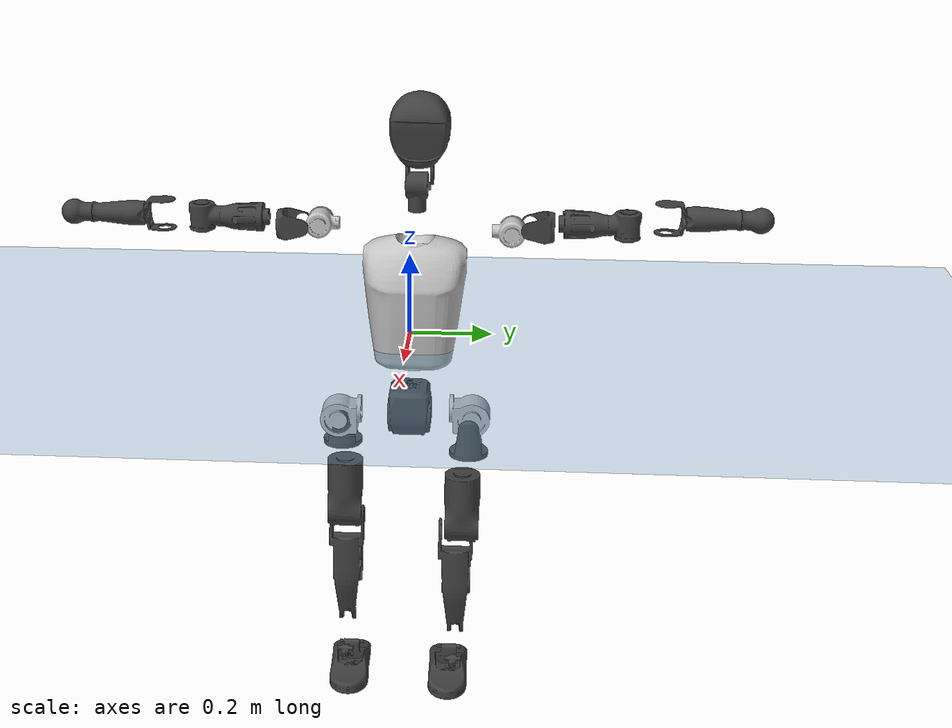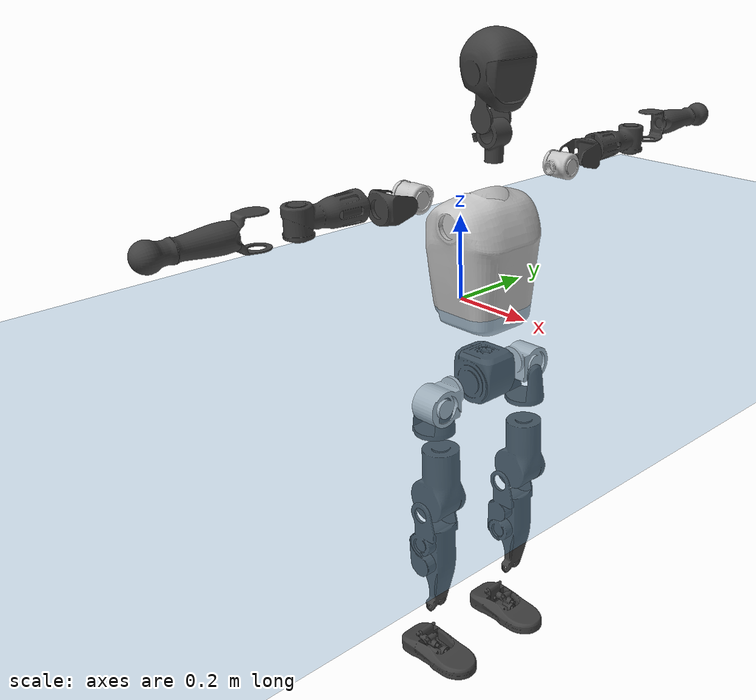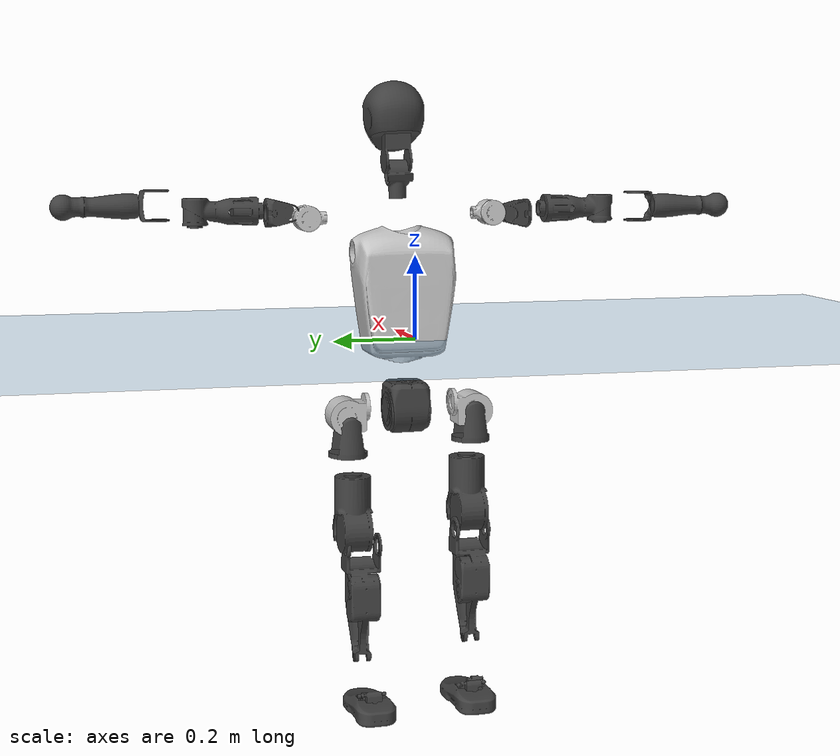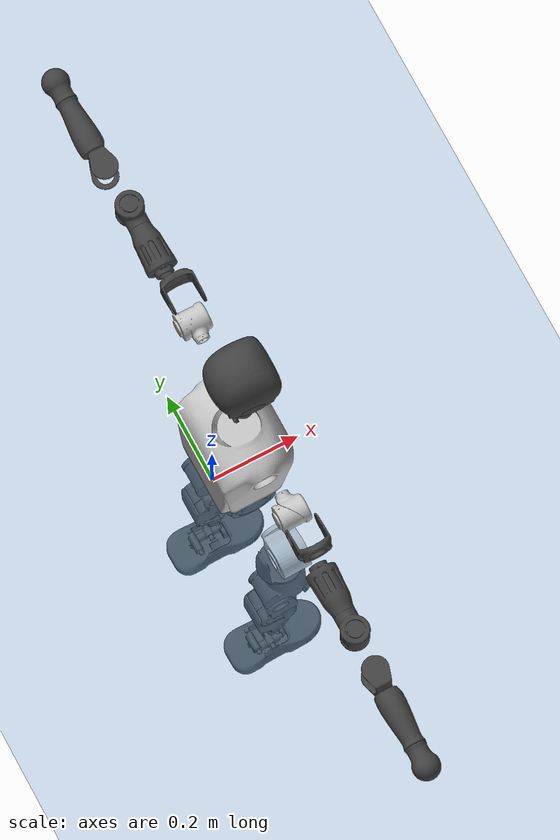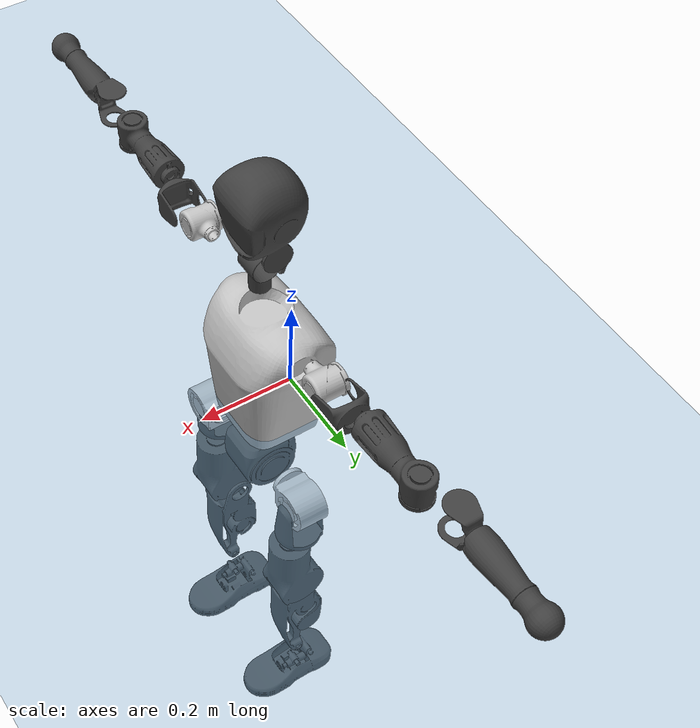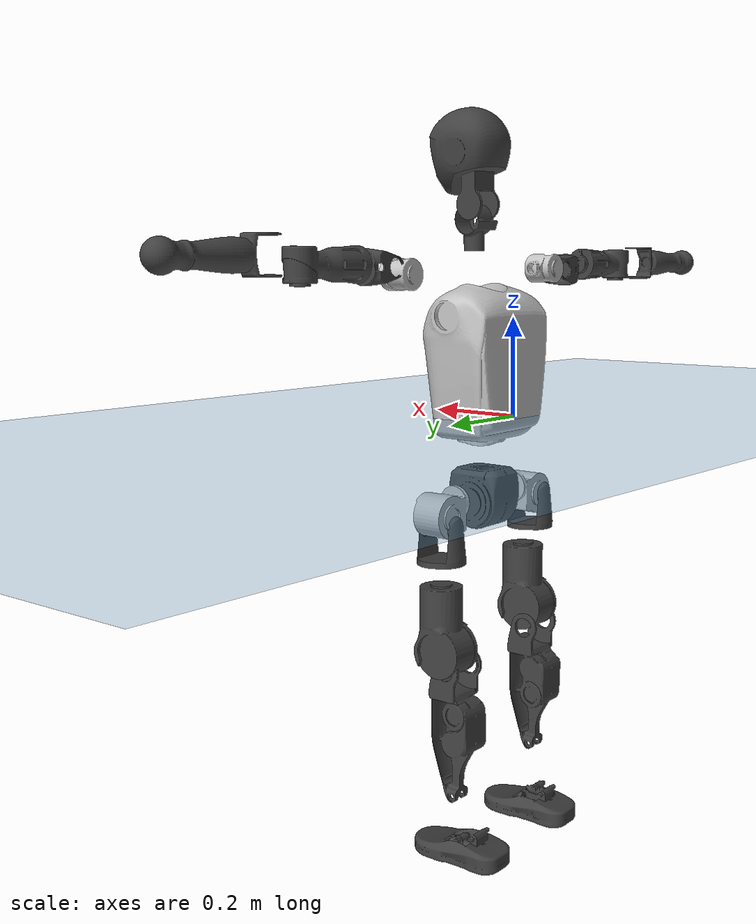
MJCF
<mujoco model="T1">
  <compiler angle="radian" assetdir="assets" balanceinertia="true" inertiafromgeom="false"/>

  <option timestep="0.005" density="1.2" viscosity="2e-05"/>

  <size nkey="1"/>

  <visual>
    <quality shadowsize="8192"/>
    <map shadowclip="0.5"/>
  </visual>

  <default>
    <default class="/">
      <joint armature="0.01" damping="0.01" frictionloss="0.1"/>
      <geom contype="0" conaffinity="0" group="1" solref="-1000 -80"/>
      <site size="0.01 0.005 0.005" group="5"/>
      <general forcelimited="true" biastype="affine" gainprm="25" biasprm="0 -25 -0.6"/>
      <default class="t1">
        <geom rgba="0.25 0.25 0.25 1"/>
        <default class="visual">
          <geom type="mesh" group="2"/>
        </default>
        <default class="collision">
          <geom group="3"/>
        </default>
        <default class="foot">
          <geom size="0.1115 0.05 0.015" type="box" condim="6" group="4" priority="1" solimp="0.015 1 0.015"/>
        </default>
        <default class="reward_collision_sphere">
          <geom group="5" rgba="1 0 0 1"/>
        </default>
      </default>
    </default>
  </default>

  <asset>
    <texture type="skybox" colorspace="auto" name="//unnamed_texture_0" builtin="gradient" rgb1="0.95 0.95 0.95" rgb2="0.95 0.95 0.95" width="100" height="600"/>
    <texture type="2d" colorspace="auto" name="texplane" builtin="checker" rgb1="0.345 0.575 0.748" rgb2="0.345 0.575 0.748" markrgb="1 1 1" width="512" height="512"/>
    <material name="MatPlane" class="/" texture="texplane" texuniform="true" texrepeat="2 2" specular="0.9"/>
    <mesh name="Trunk" class="/" file="Trunk.stl"/>
    <mesh name="H1" class="/" file="H1.stl"/>
    <mesh name="H2" class="/" file="H2.stl"/>
    <mesh name="AL1" class="/" file="AL1.stl"/>
    <mesh name="AL2" class="/" file="AL2.stl"/>
    <mesh name="AL3" class="/" file="AL3.stl"/>
    <mesh name="left_hand_link" class="/" file="left_hand_link.stl"/>
    <mesh name="AR1" class="/" file="AR1.stl"/>
    <mesh name="AR2" class="/" file="AR2.stl"/>
    <mesh name="AR3" class="/" file="AR3.stl"/>
    <mesh name="right_hand_link" class="/" file="right_hand_link.stl"/>
    <mesh name="Waist" class="/" file="Waist.stl"/>
    <mesh name="Hip_Pitch_Left" class="/" file="Hip_Pitch_Left.stl"/>
    <mesh name="Hip_Roll_Left" class="/" file="Hip_Roll_Left.stl"/>
    <mesh name="Hip_Yaw_Left" class="/" file="Hip_Yaw_Left.stl"/>
    <mesh name="Shank_Left" class="/" file="Shank_Left.stl"/>
    <mesh name="Ankle_Cross_Left" class="/" file="Ankle_Cross_Left.stl"/>
    <mesh name="left_foot_link" class="/" file="left_foot_link.stl"/>
    <mesh name="Hip_Pitch_Right" class="/" file="Hip_Pitch_Right.stl"/>
    <mesh name="Hip_Roll_Right" class="/" file="Hip_Roll_Right.stl"/>
    <mesh name="Hip_Yaw_Right" class="/" file="Hip_Yaw_Right.stl"/>
    <mesh name="Shank_Right" class="/" file="Shank_Right.stl"/>
    <mesh name="Ankle_Cross_Right" class="/" file="Ankle_Cross_Right.stl"/>
    <mesh name="right_foot_link" class="/" file="right_foot_link.stl"/>
  </asset>

  <worldbody>
    <geom name="floor" class="/" size="100 100 0.125" type="plane" group="0" material="MatPlane"/>
    <light name="toplight_shadow" class="/" pos="0 0 5" dir="0.0990148 0.0990148 -0.990148" type="directional" ambient="0.04 0.04 0.04" diffuse="0.55 0.55 0.55" specular="0.12 0.12 0.12"/>
    <light name="toplight_fill" class="/" pos="0 0 5" dir="0.0990148 0.0990148 -0.990148" type="directional" castshadow="false" ambient="0.04 0.04 0.04" diffuse="0.3 0.3 0.3" specular="0.08 0.08 0.08"/>
    <body name="trunk" childclass="t1" pos="0.00967437 0.0143048 -0.0111087" quat="0.999983 -0.00462302 -0.0016816 0.00309985">
      <inertial pos="0.0634869 0.00803172 0.137259" quat="0.999571 -0.0237833 -0.000262175 0.0170744" mass="32.5775" diaginertia="0.174525 0.550346 0.251258"/>
      <joint name="//unnamed_joint_0" type="free" armature="0" damping="0" frictionloss="0"/>
      <geom name="//unnamed_geom_1" class="visual" rgba="0.76 0.76 0.76 1" mesh="Trunk"/>
      <geom name="//unnamed_geom_2" class="collision" size="0.10392 0.13856 0.20784" pos="0.0696092 0 0.168132" type="box"/>
      <geom name="//unnamed_geom_3" class="reward_collision_sphere" size="0.159344" pos="0.0696092 0 0.14011"/>
      <geom name="//unnamed_geom_4" class="reward_collision_sphere" size="0.020784" pos="0.0696092 0.135621 0"/>
      <geom name="//unnamed_geom_5" class="reward_collision_sphere" size="0.020784" pos="0.0696092 -0.135621 0"/>
      <geom name="//unnamed_geom_6" class="reward_collision_sphere" size="0.020784" pos="0.0696092 0.170723 0.252198"/>
      <geom name="//unnamed_geom_7" class="reward_collision_sphere" size="0.020784" pos="0.0696092 -0.170723 0.252198"/>
      <site name="imu" pos="0.0611282 0.0788927 -0.0175136" size="0.013856"/>
      <camera name="track" pos="0 -3.19108 0" quat="0.707107 0.707107 0 0" mode="trackcom"/>
      <camera name="ego_camera" pos="0.141539 0 0.588461" quat="-0.5 -0.5 0.5 0.5"/>
      <body name="H1" pos="0.0744552 0.00455001 0.34384" quat="0.999985 -0.0016814 0.0051449 -0.000922434">
        <inertial pos="-0.0116485 -0.00671347 0.0686441" quat="0.807001 0.0161998 0.0493522 0.588262" mass="1.13381" diaginertia="0.000428089 0.00176664 0.000846435"/>
        <joint name="AAHead_yaw" pos="0 0 0" axis="0.000868366 0.0790271 0.996872" stiffness="0.0150696" range="-1.32196 1.45806" armature="0.00545729" damping="0.00774031" frictionloss="0.22903"/>
        <geom name="//unnamed_geom_8" class="visual" mesh="H1"/>
        <body name="H2" pos="-0.0151502 0.00544767 0.0909361" quat="0.999997 -0.00143321 -0.00115264 -0.00152692">
          <inertial pos="0.00389396 0.0189385 0.140125" quat="0.985785 0.134979 -0.0777367 -0.0629681" mass="1.96045" diaginertia="0.00478369 0.0286727 0.0112847"/>
          <joint name="Head_pitch" pos="0 0 0" axis="0.0677931 -0.997528 -0.0184764" stiffness="0.0494412" range="-1.10427 0.13723" armature="0.00936118" damping="0" frictionloss="0.202447"/>
          <geom name="//unnamed_geom_9" class="visual" mesh="H2"/>
          <geom name="//unnamed_geom_10" class="collision" size="0.110848" pos="0.0116015 0 0.154121"/>
          <geom name="//unnamed_geom_11" class="reward_collision_sphere" size="0.124704" pos="0.0232031 0 0.14011"/>
        </body>
      </body>
      <body name="AL1" pos="0.0786642 0.180747 0.300927" quat="0.999991 -0.0031997 0.00254638 -0.000830384">
        <inertial pos="-0.00618271 0.0636189 0.0170816" quat="0.540974 0.459499 -0.545301 0.445932" mass="1.09056" diaginertia="0.00228627 0.0108104 0.00130082"/>
        <joint name="Left_Shoulder_Pitch" pos="0 0 0" axis="0.0753746 0.997065 0.0134378" range="-3.28864 1.41534" armature="0.0193802" damping="0.0335056" frictionloss="0.100223"/>
        <geom name="//unnamed_geom_12" class="visual" rgba="0.76 0.76 0.76 1" mesh="AL1"/>
        <body name="AL2" pos="0.0078819 0.0886814 0.0147179" quat="0.999955 0.0084646 -0.00378097 0.00175484">
          <inertial pos="0.00325963 0.0788081 -0.000379086" quat="0.487196 0.513203 -0.486165 0.512744" mass="0.433088" diaginertia="0.000810765 0.00402926 0.000965993"/>
          <joint name="Left_Shoulder_Roll" pos="0 0 0" axis="-0.995718 0.0379288 0.0843028" stiffness="0.0856712" range="-1.89775 1.90227" armature="0.0210288" damping="0.0958298" frictionloss="0.0284099"/>
          <geom name="//unnamed_geom_13" class="visual" mesh="AL2"/>
          <body name="AL3" pos="-0.0122495 0.0785984 0.0050323" quat="0.999966 -0.00212245 -6.4814e-05 -0.00800672">
            <inertial pos="-0.00015334 0.151046 0.008572" quat="0.736198 0.675753 0.0288268 0.0232147" mass="2.36858" diaginertia="0.0296126 0.121904 0.00465216"/>
            <joint name="Left_Elbow_Pitch" pos="0 0 0" axis="0.0318889 -0.997434 0.0640926" stiffness="0.0722395" range="-2.63765 2.61668" armature="0.00170543" damping="0.0955309" frictionloss="0.0435624"/>
            <geom name="//unnamed_geom_14" class="visual" mesh="AL3"/>
            <geom name="//unnamed_geom_15" class="collision" size="0.0415679 0.10392" pos="0 0.0797771 0" quat="0.707105 0.707108 0 0" type="cylinder"/>
            <geom name="//unnamed_geom_16" class="reward_collision_sphere" size="0.0498815"/>
            <body name="left_hand_link" pos="-0.010413 0.236253 0.0167922" quat="0.99998 -0.00201873 0.00176657 0.0057671">
              <inertial pos="0.00210082 0.172894 0.0149556" quat="0.714683 0.699017 -0.0202719 0.0138838" mass="0.744815" diaginertia="0.0148661 0.0899302 0.0010556"/>
              <joint name="Left_Elbow_Yaw" pos="0 0 0" axis="0.0159762 -0.0574221 0.998222" range="-2.44506 -0.0527435" armature="0.0189391" damping="0.00149547" frictionloss="0.0579932"/>
              <geom name="//unnamed_geom_17" class="visual" mesh="left_hand_link"/>
              <geom name="//unnamed_geom_18" class="collision" size="0.0415679 0.12124" pos="0 0.207421 0" quat="0.707105 0.707108 0 0" type="cylinder"/>
              <geom name="//unnamed_geom_19" class="reward_collision_sphere" size="0.0692799"/>
              <geom name="//unnamed_geom_20" class="reward_collision_sphere" size="0.0484959" pos="0 0.17551 0"/>
              <geom name="//unnamed_geom_21" class="reward_collision_sphere" size="0.0484959" pos="0 0.343042 0"/>
            </body>
          </body>
        </body>
      </body>
      <body name="AR1" pos="0.0628816 -0.178495 0.306101" quat="0.999986 0.00393608 0.00317572 0.00156554">
        <inertial pos="-0.00331958 -0.0558475 -0.0162514" quat="0.511145 0.494619 -0.490582 0.503401" mass="1.39629" diaginertia="0.00308437 0.013062 0.00119654"/>
        <joint name="Right_Shoulder_Pitch" pos="0 0 0" axis="-0.00968777 -0.99995 0.00244056" range="-1.06364 3.30864" armature="0.0216526" damping="0" frictionloss="0.0911408"/>
        <geom name="//unnamed_geom_22" class="visual" rgba="0.76 0.76 0.76 1" mesh="AR1"/>
        <body name="AR2" pos="0.00528976 -0.0899465 -0.00377662" quat="0.999999 0.000501862 -0.000956264 -0.00118003">
          <inertial pos="0.00268038 -0.0608117 0.0170375" quat="0.493466 0.482636 -0.486836 0.535298" mass="0.33114" diaginertia="0.000881578 0.00389658 0.00102282"/>
          <joint name="Right_Shoulder_Roll" pos="0 0 0" axis="-0.999983 0.00555706 -0.00145898" range="-1.57532 1.25781" armature="0.0135165" damping="0.0909426" frictionloss="0.130944"/>
          <geom name="//unnamed_geom_23" class="visual" mesh="AR2"/>
          <body name="AR3" pos="-0.0133611 -0.0910325 0.0122221" quat="0.999997 0.00138857 0.000549196 -0.00178156">
            <inertial pos="-0.00896004 -0.124943 0.00592015" quat="0.70645 0.707697 -0.00759671 0.00603291" mass="2.2874" diaginertia="0.0246084 0.0983667 0.00256222"/>
            <joint name="Right_Elbow_Pitch" pos="0 0 0" axis="0.0103118 0.998984 0.0438675" stiffness="0.0611895" range="-2.23977 2.29649" armature="0.00244967" damping="0.00541242" frictionloss="0.250244"/>
            <geom name="//unnamed_geom_24" class="visual" mesh="AR3"/>
            <geom name="//unnamed_geom_25" class="collision" size="0.0415679 0.10392" pos="0 -0.0797771 0" quat="0.707105 0.707108 0 0" type="cylinder"/>
            <geom name="//unnamed_geom_26" class="reward_collision_sphere" size="0.0498815"/>
            <body name="right_hand_link" pos="-0.00392586 -0.238835 0.00258086" quat="0.999983 -0.00206999 -0.00464138 -0.002818">
              <inertial pos="0.00755815 -0.170643 0.0186905" quat="0.674605 0.734209 -0.0733763 0.0214522" mass="0.655388" diaginertia="0.0202943 0.0839527 0.00097497"/>
              <joint name="Right_Elbow_Yaw" pos="0 0 0" axis="0.0524661 -0.0219118 0.998382" stiffness="0.078019" range="0.325691 2.09168" armature="0.0190284" damping="0.0436031" frictionloss="0.0840752"/>
              <geom name="//unnamed_geom_27" class="visual" mesh="right_hand_link"/>
              <geom name="//unnamed_geom_28" class="collision" size="0.0415679 0.12124" pos="0 -0.207421 0" quat="0.707105 0.707108 0 0" type="cylinder"/>
              <geom name="//unnamed_geom_29" class="reward_collision_sphere" size="0.0692799"/>
              <geom name="//unnamed_geom_30" class="reward_collision_sphere" size="0.0484959" pos="0 -0.17551 0"/>
              <geom name="//unnamed_geom_31" class="reward_collision_sphere" size="0.0484959" pos="0 -0.343042 0"/>
            </body>
          </body>
        </body>
      </body>
      <body name="Waist" pos="0.0621119 -0.00910362 -0.167633" quat="0.999989 0.000534027 -0.00253728 0.00390794">
        <inertial pos="-0.00304296 -0.0030642 -0.000654124" quat="0.972561 -0.0025844 -0.232358 -0.0112985" mass="7.83223" diaginertia="0.01317 0.0573951 0.0259114"/>
        <joint name="Waist" pos="0 0 0" axis="0.0778061 -0.00033929 0.996968" stiffness="0.0929619" range="-1.58774 1.65486" armature="0.00777724" damping="0" frictionloss="0.242084"/>
        <geom name="//unnamed_geom_32" class="visual" mesh="Waist"/>
        <body name="Hip_Pitch_Left" pos="-0.00270297 0.153389 0.00910929" quat="0.999989 0.00277118 -0.0022881 -0.00295686">
          <inertial pos="-0.0163523 -0.0221248 -0.00971746" quat="0.989853 0.138782 0.0221456 -0.0209905" mass="2.31324" diaginertia="0.00365872 0.0148144 0.00605508"/>
          <joint name="Left_Hip_Pitch" pos="0 0 0" axis="0.0487279 0.998671 0.0167863" stiffness="0.017385" range="-1.7794 1.24933" armature="0.0173277" damping="0.0836789" frictionloss="0.181646"/>
          <geom name="//unnamed_geom_33" class="visual" rgba="0.76 0.76 0.76 1" mesh="Hip_Pitch_Left"/>
          <body name="Hip_Roll_Left" pos="0.00216219 -0.00701225 -0.0439201" quat="0.999992 0.000714728 0.00293011 0.00251322">
            <inertial pos="0.0138841 -0.0144655 -0.0721578" quat="0.750482 -0.0196717 -0.0150059 0.660428" mass="1.13391" diaginertia="0.0035365 0.0227839 0.00342042"/>
            <joint name="Left_Hip_Roll" pos="0 0 0" axis="-0.998808 -0.0366953 -0.0321741" stiffness="0.0281972" range="-1.51542 -0.00224264" armature="0.0116151" damping="0" frictionloss="0.229593"/>
            <geom name="//unnamed_geom_34" class="visual" mesh="Hip_Roll_Left"/>
            <geom name="//unnamed_geom_35" class="reward_collision_sphere" size="0.0762079"/>
            <body name="Hip_Yaw_Left" pos="0.00952724 -0.0137568 -0.128357" quat="1 -5.47384e-05 -0.000414569 -0.000435867">
              <inertial pos="-0.00822354 0.00311608 -0.119584" quat="0.752811 -0.00843711 -0.0254536 0.657691" mass="7.69379" diaginertia="0.0620168 0.273985 0.0176648"/>
              <joint name="Left_Hip_Yaw" pos="0 0 0" axis="-0.0447943 0.0679534 -0.996682" stiffness="0.0306811" range="-1.22356 1.28295" armature="0.0174148" damping="0.0116338" frictionloss="0.118674"/>
              <geom name="//unnamed_geom_36" class="visual" mesh="Hip_Yaw_Left"/>
              <geom name="//unnamed_geom_37" class="collision" size="0.0692799 0.110848" type="cylinder"/>
              <body name="Shank_Left" pos="-0.0300148 -0.0157495 -0.172491" quat="0.999998 0.00162584 0.000746444 0.000741014">
                <inertial pos="-0.0137085 0.0178673 -0.174548" quat="0.997651 0.0271604 -0.0269478 0.0568282" mass="4.78903" diaginertia="0.0592662 0.355237 0.00818265"/>
                <joint name="Left_Knee_Pitch" pos="0 0 0" axis="-0.00646996 0.999947 0.00803908" stiffness="0.00902972" range="-0.221726 2.32343" armature="0.00758389" damping="0" frictionloss="0.00783807"/>
                <geom name="//unnamed_geom_38" class="visual" mesh="Shank_Left"/>
                <geom name="//unnamed_geom_39" class="collision" size="0.0692799 0.10392" pos="0 0 -0.168132" type="cylinder"/>
                <geom name="//unnamed_geom_40" class="reward_collision_sphere" size="0.0900638"/>
                <body name="Ankle_Cross_Left" pos="-0.00823023 -0.00674358 -0.379995" quat="0.999999 0.000600338 -0.000900981 0.000218938">
                  <inertial pos="-0.000194049 0.00440905 -0.0228266" quat="0.427365 0.555185 0.572056 0.426475" mass="0.277778" diaginertia="6.18695e-05 0.00039914 8.04475e-05"/>
                  <joint name="Left_Ankle_Pitch" pos="0 0 0" axis="-0.0789038 0.996087 0.0397991" stiffness="0.0854846" range="-0.68977 0.495852" armature="0.0134626" damping="0.0045283" frictionloss="0.211156"/>
                  <geom name="//unnamed_geom_41" class="visual" mesh="Ankle_Cross_Left"/>
                  <body name="left_foot_link" pos="0.00379695 -0.0111154 -0.0184206" quat="0.999961 -0.00638934 0.004119 0.00449821">
                    <inertial pos="-0.0168143 -0.00253933 -0.00324482" quat="0.0298651 0.66857 -0.0192778 0.7428" mass="1.67657" diaginertia="0.00481852 0.0214463 0.0120628"/>
                    <joint name="Left_Ankle_Roll" pos="0 0 0" axis="-0.99948 -0.016393 0.0277523" stiffness="0.0165723" range="-0.417233 0.665637" armature="0.0137722" damping="0.0729591" frictionloss="0.0749608"/>
                    <geom name="//unnamed_geom_42" class="visual" mesh="left_foot_link"/>
                    <geom name="left_foot" class="foot" size="0.0763547 0.0937398 0.0353727" pos="0.0116015 0 -0.0210165"/>
                    <geom name="//unnamed_geom_44" class="reward_collision_sphere" size="0.0720511" pos="0.0116015 0 -0.0210165"/>
                    <geom name="//unnamed_geom_45" class="reward_collision_sphere" size="0.0415679" pos="0.110215 -0.0366975 -0.0210165"/>
                    <geom name="//unnamed_geom_46" class="reward_collision_sphere" size="0.0415679" pos="-0.0812107 -0.0366975 -0.0210165"/>
                    <site name="left_foot" class="foot" pos="0.0116015 0 -0.0210165" size="0.013856"/>
                  </body>
                </body>
              </body>
            </body>
          </body>
        </body>
        <body name="Hip_Pitch_Right" pos="0.0143569 -0.173113 0.00743527" quat="0.99998 6.27572e-05 -0.00125925 0.00626067">
          <inertial pos="0.0122284 0.0201885 -0.0398065" quat="0.976766 -0.212951 0.017337 -0.0166969" mass="2.5366" diaginertia="0.00298835 0.013165 0.00613458"/>
          <joint name="Right_Hip_Pitch" pos="0 0 0" axis="0.013118 -0.99947 0.0297876" range="-1.57735 1.87631" armature="0.0168223" damping="0.0662934" frictionloss="0.0464083"/>
          <geom name="//unnamed_geom_47" class="visual" rgba="0.76 0.76 0.76 1" mesh="Hip_Pitch_Right"/>
          <body name="Hip_Roll_Right" pos="-0.0151277 0.008093 -0.017963" quat="0.999999 4.13239e-05 0.00122707 0.000555037">
            <inertial pos="0.0168092 0.0111198 -0.0611985" quat="0.728409 -0.0445634 -0.0272899 0.683147" mass="0.864015" diaginertia="0.00359502 0.016328 0.0032492"/>
            <joint name="Right_Hip_Roll" pos="0 0 0" axis="-0.999242 0.0385362 -0.00559208" range="0.0351335 1.69247" armature="0.00565642" damping="0" frictionloss="0.214631"/>
            <geom name="//unnamed_geom_48" class="visual" mesh="Hip_Roll_Right"/>
            <geom name="//unnamed_geom_49" class="reward_collision_sphere" size="0.0762079"/>
            <body name="Hip_Yaw_Right" pos="0.0120307 0.00596805 -0.118856" quat="0.999998 -0.000554549 -6.65278e-05 0.00165809">
              <inertial pos="-0.00841049 0.0153877 -0.14214" quat="0.731737 -0.0143651 -0.0444345 0.679986" mass="4.56499" diaginertia="0.0506345 0.172191 0.0132304"/>
              <joint name="Right_Hip_Yaw" pos="0 0 0" axis="-0.00380561 -0.00122049 -0.999992" range="-0.906537 0.944903" armature="0.0259002" damping="0.0573924" frictionloss="0.183269"/>
              <geom name="//unnamed_geom_50" class="visual" mesh="Hip_Yaw_Right"/>
              <geom name="//unnamed_geom_51" class="collision" size="0.0692799 0.110848" type="cylinder"/>
              <body name="Shank_Right" pos="-0.0326737 0.00175104 -0.178449" quat="1 7.79328e-05 -0.000268156 0.000366267">
                <inertial pos="-0.0244489 -0.0190546 -0.180667" quat="0.998468 -0.0250632 0.0394839 -0.0295772" mass="3.68376" diaginertia="0.0441332 0.314228 0.00946545"/>
                <joint name="Right_Knee_Pitch" pos="0 0 0" axis="-0.0107277 -0.996504 0.0828561" stiffness="0.0398253" range="-2.31334 -0.063134" armature="0.00893502" damping="0" frictionloss="0.0657966"/>
                <geom name="//unnamed_geom_52" class="visual" mesh="Shank_Right"/>
                <geom name="//unnamed_geom_53" class="collision" size="0.0692799 0.10392" pos="0 0 -0.168132" type="cylinder"/>
                <geom name="//unnamed_geom_54" class="reward_collision_sphere" size="0.0900638"/>
                <body name="Ankle_Cross_Right" pos="-0.0113665 -0.00835052 -0.389862" quat="0.999992 0.000788283 0.000112052 0.00385136">
                  <inertial pos="-0.0133753 -0.0114999 -0.00949992" quat="0.476285 0.516094 0.538775 0.465319" mass="0.22667" diaginertia="5.03863e-05 0.00025658 6.9767e-05"/>
                  <joint name="Right_Ankle_Pitch" pos="0 0 0" axis="0.0350286 -0.995578 -0.0871581" stiffness="0.0337842" range="-0.174566 0.794344" armature="0.00849464" damping="0.00666431" frictionloss="0.0810781"/>
                  <geom name="//unnamed_geom_55" class="visual" mesh="Ankle_Cross_Right"/>
                  <body name="right_foot_link" pos="0.00893327 0.0144646 -0.0307835" quat="0.999998 0.000234524 -0.000255792 -0.00183832">
                    <inertial pos="-0.0177283 0.00261552 -0.0251656" quat="0.0388511 0.578164 -0.0227758 0.814677" mass="1.71104" diaginertia="0.00434477 0.0258238 0.0133328"/>
                    <joint name="Right_Ankle_Roll" pos="0 0 0" axis="-0.997356 -0.0431574 -0.0584739" range="-0.446703 0.624366" armature="0.00712179" damping="0.0146405" frictionloss="0.253352"/>
                    <geom name="//unnamed_geom_56" class="visual" mesh="right_foot_link"/>
                    <geom name="right_foot" class="foot" size="0.078712 0.0887831 0.0301468" pos="0.0116015 0 -0.0210165"/>
                    <geom name="//unnamed_geom_58" class="reward_collision_sphere" size="0.0554239"/>
                    <geom name="//unnamed_geom_59" class="reward_collision_sphere" size="0.0415679" pos="0.0116015 0 -0.0210165"/>
                    <geom name="//unnamed_geom_60" class="reward_collision_sphere" size="0.0415679" pos="0.110215 0.0366975 -0.0210165"/>
                    <geom name="//unnamed_geom_61" class="reward_collision_sphere" size="0.0415679" pos="-0.0812107 0.0366975 -0.0210165"/>
                    <site name="right_foot" class="foot" pos="0.0116015 0 -0.0210165" size="0.013856"/>
                  </body>
                </body>
              </body>
            </body>
          </body>
        </body>
      </body>
    </body>
  </worldbody>

  <contact>
    <pair class="/" geom1="floor" geom2="left_foot" name="//unnamed_contact_0"/>
    <pair class="/" geom1="floor" geom2="right_foot" name="//unnamed_contact_1"/>
  </contact>

  <actuator>
    <general name="AAHead_yaw" class="/" joint="AAHead_yaw" forcerange="-15.3925 15.3925" gainprm="40.6474" biasprm="0 -40.6474 -0.758605"/>
    <general name="Head_pitch" class="/" joint="Head_pitch" forcerange="-6.37588 6.37588" gainprm="40.6474" biasprm="0 -40.6474 -0.758605"/>
    <general name="Left_Shoulder_Pitch" class="/" joint="Left_Shoulder_Pitch" forcerange="-21.9146 21.9146" gainprm="40.6474" biasprm="0 -40.6474 -0.758605"/>
    <general name="Left_Shoulder_Roll" class="/" joint="Left_Shoulder_Roll" forcerange="-15.6695 15.6695" gainprm="40.6474" biasprm="0 -40.6474 -0.758605"/>
    <general name="Left_Elbow_Pitch" class="/" joint="Left_Elbow_Pitch" forcerange="-11.8434 11.8434" gainprm="40.6474" biasprm="0 -40.6474 -0.758605"/>
    <general name="Left_Elbow_Yaw" class="/" joint="Left_Elbow_Yaw" forcerange="-8.40592 8.40592" gainprm="40.6474" biasprm="0 -40.6474 -0.758605"/>
    <general name="Right_Shoulder_Pitch" class="/" joint="Right_Shoulder_Pitch" forcerange="-26.0008 26.0008" gainprm="40.6474" biasprm="0 -40.6474 -0.758605"/>
    <general name="Right_Shoulder_Roll" class="/" joint="Right_Shoulder_Roll" forcerange="-11.777 11.777" gainprm="40.6474" biasprm="0 -40.6474 -0.758605"/>
    <general name="Right_Elbow_Pitch" class="/" joint="Right_Elbow_Pitch" forcerange="-13.7662 13.7662" gainprm="40.6474" biasprm="0 -40.6474 -0.758605"/>
    <general name="Right_Elbow_Yaw" class="/" joint="Right_Elbow_Yaw" forcerange="-37.4913 37.4913" gainprm="40.6474" biasprm="0 -40.6474 -0.758605"/>
    <general name="Waist" class="/" joint="Waist" forcerange="-42.1442 42.1442" gainprm="40.6474" biasprm="0 -40.6474 -0.758605"/>
    <general name="Left_Hip_Pitch" class="/" joint="Left_Hip_Pitch" forcerange="-35.1075 35.1075" gainprm="40.6474" biasprm="0 -40.6474 -0.758605"/>
    <general name="Left_Hip_Roll" class="/" joint="Left_Hip_Roll" forcerange="-50.6005 50.6005" gainprm="40.6474" biasprm="0 -40.6474 -0.758605"/>
    <general name="Left_Hip_Yaw" class="/" joint="Left_Hip_Yaw" forcerange="-28.5279 28.5279" gainprm="40.6474" biasprm="0 -40.6474 -0.758605"/>
    <general name="Left_Knee_Pitch" class="/" joint="Left_Knee_Pitch" forcerange="-83.3775 83.3775" gainprm="40.6474" biasprm="0 -40.6474 -0.758605"/>
    <general name="Left_Ankle_Pitch" class="/" joint="Left_Ankle_Pitch" forcerange="-19.7289 19.7289" gainprm="40.6474" biasprm="0 -40.6474 -0.758605"/>
    <general name="Left_Ankle_Roll" class="/" joint="Left_Ankle_Roll" forcerange="-20.5084 20.5084" gainprm="40.6474" biasprm="0 -40.6474 -0.758605"/>
    <general name="Right_Hip_Pitch" class="/" joint="Right_Hip_Pitch" forcerange="-72.0352 72.0352" gainprm="40.6474" biasprm="0 -40.6474 -0.758605"/>
    <general name="Right_Hip_Roll" class="/" joint="Right_Hip_Roll" forcerange="-42.2668 42.2668" gainprm="40.6474" biasprm="0 -40.6474 -0.758605"/>
    <general name="Right_Hip_Yaw" class="/" joint="Right_Hip_Yaw" forcerange="-36.6174 36.6174" gainprm="40.6474" biasprm="0 -40.6474 -0.758605"/>
    <general name="Right_Knee_Pitch" class="/" joint="Right_Knee_Pitch" forcerange="-116.284 116.284" gainprm="40.6474" biasprm="0 -40.6474 -0.758605"/>
    <general name="Right_Ankle_Pitch" class="/" joint="Right_Ankle_Pitch" forcerange="-42.1958 42.1958" gainprm="40.6474" biasprm="0 -40.6474 -0.758605"/>
    <general name="Right_Ankle_Roll" class="/" joint="Right_Ankle_Roll" forcerange="-11.5675 11.5675" gainprm="40.6474" biasprm="0 -40.6474 -0.758605"/>
  </actuator>

  <sensor>
    <gyro site="imu" name="imu_angular_velocity"/>
    <velocimeter site="imu" name="imu_linear_velocity"/>
    <framelinvel objtype="site" objname="left_foot" name="left_foot_global_linear_velocity"/>
    <framelinvel objtype="site" objname="right_foot" name="right_foot_global_linear_velocity"/>
  </sensor>

  <keyframe>
    <key name="home" qpos="0 0 0.6385 1 0 0 0 0 0 0 1.4 0 -0.4 0 -1.4 0 0.4 0 -0.4 0 0 0.8 -0.4 0 0.4 0 0 -0.8 0.4 0"/>
  </keyframe>
</mujoco>
